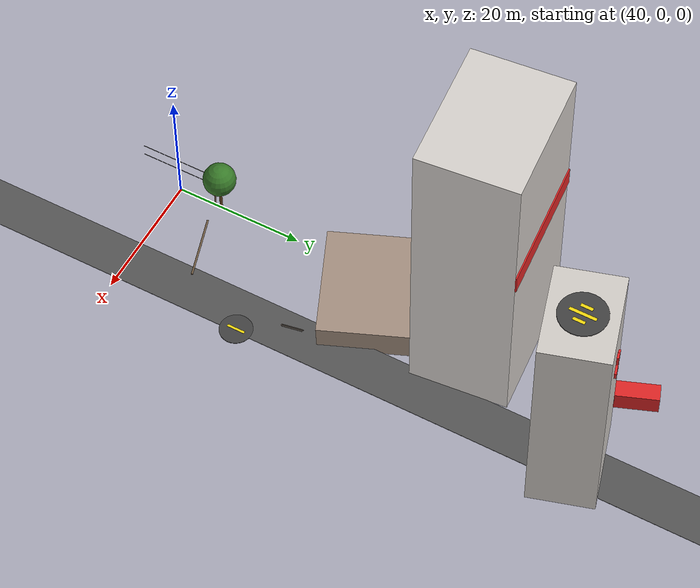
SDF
<sdf version="1.9">
 <world name="p110_world">
  <model name="road_ns_e">
   <static>true</static>
   <pose>55 0 0.05 0 0 0</pose>
   <link name="link">
    <visual name="v">
     <geometry><box><size>7 260 0.08</size></box></geometry>
     <material>
      <ambient>0.27 0.27 0.27 1</ambient>
      <diffuse>0.33 0.33 0.33 1</diffuse>
      <specular>0.10 0.10 0.10 1</specular>
     </material>
    </visual>
   </link>
  </model>
  <model name="clinic">
   <static>true</static>
   <pose>55 72 18 0 0 0.3</pose>
   <link name="link">
    <collision name="c"><geometry><box><size>14 10 36</size></box></geometry></collision>
    <visual name="main">
     <geometry><box><size>14 10 36</size></box></geometry>
     <material>
      <ambient>0.72 0.70 0.68 1</ambient>
      <diffuse>0.82 0.80 0.78 1</diffuse>
      <specular>0.18 0.18 0.18 1</specular>
     </material>
    </visual>
    <visual name="cross_h">
     <pose>0 5.2 8 0 0 0</pose>
     <geometry><box><size>4 0.3 1</size></box></geometry>
     <material><ambient>0.85 0.12 0.12 1</ambient><diffuse>0.90 0.15 0.15 1</diffuse></material>
    </visual>
    <visual name="cross_v">
     <pose>0 5.2 8 0 0 0</pose>
     <geometry><box><size>1 0.3 4</size></box></geometry>
     <material><ambient>0.85 0.12 0.12 1</ambient><diffuse>0.90 0.15 0.15 1</diffuse></material>
    </visual>
   </link>
  </model>
  <model name="rubble_pile_1">
   <static>true</static>
   <pose>45 35 3 0 0.15 0.4</pose>
   <link name="link">
    <collision name="c"><geometry><box><size>16 14 6</size></box></geometry></collision>
    <visual name="v">
     <geometry><box><size>16 14 6</size></box></geometry>
     <material><ambient>0.56 0.52 0.46 1</ambient><diffuse>0.64 0.56 0.50 1</diffuse></material>
    </visual>
   </link>
  </model>
  <model name="beam_2">
   <static>true</static>
   <pose>55 28 2.0 0 0.65 -0.4</pose>
   <link name="link">
    <collision name="c"><geometry><box><size>0.25 0.25 7</size></box></geometry></collision>
    <visual name="v">
     <geometry><box><size>0.25 0.25 7</size></box></geometry>
     <material>
      <ambient>0.28 0.26 0.24 1</ambient>
      <diffuse>0.36 0.33 0.30 1</diffuse>
      <specular>0.45 0.42 0.38 1</specular>
     </material>
    </visual>
   </link>
  </model>
  <model name="tr_ew4">
   <static>true</static>
   <pose>40 7 0 0 0 0</pose>
   <link name="link">
    <visual name="t">
     <pose>0 0 2.5 0 0 0</pose>
     <geometry><cylinder><radius>0.22</radius><length>5</length></cylinder></geometry>
     <material><ambient>0.34 0.21 0.10 1</ambient><diffuse>0.40 0.26 0.13 1</diffuse></material>
    </visual>
    <visual name="c">
     <pose>0 0 6.8 0 0 0</pose>
     <geometry><sphere><radius>2.5</radius></sphere></geometry>
     <material><ambient>0.18 0.40 0.13 1</ambient><diffuse>0.22 0.48 0.16 1</diffuse></material>
    </visual>
   </link>
  </model>
  <model name="tr_court3">
   <static>true</static>
   <pose>35 55 0 0 0 0</pose>
   <link name="link">
    <visual name="t">
     <pose>0 0 2.5 0 0 0</pose>
     <geometry><cylinder><radius>0.20</radius><length>5</length></cylinder></geometry>
     <material><ambient>0.35 0.22 0.10 1</ambient><diffuse>0.42 0.27 0.13 1</diffuse></material>
    </visual>
    <visual name="c">
     <pose>0 0 6.6 0 0 0</pose>
     <geometry><sphere><radius>2.3</radius></sphere></geometry>
     <material><ambient>0.17 0.41 0.13 1</ambient><diffuse>0.21 0.49 0.16 1</diffuse></material>
    </visual>
   </link>
  </model>
  <model name="fire_truck">
   <static>true</static>
   <pose>42 75 1.5 0 0 -1.2</pose>
   <link name="link">
    <collision name="c"><geometry><box><size>9 2.6 3.0</size></box></geometry></collision>
    <visual name="body">
     <geometry><box><size>9 2.6 3.0</size></box></geometry>
     <material>
      <ambient>0.78 0.12 0.12 1</ambient>
      <diffuse>0.88 0.15 0.15 1</diffuse>
      <specular>0.28 0.12 0.12 1</specular>
     </material>
    </visual>
    <visual name="stripe">
     <pose>3.2 0 0.5 0 0 0</pose>
     <geometry><box><size>2.6 2.62 0.9</size></box></geometry>
     <material><ambient>0.85 0.85 0.85 1</ambient><diffuse>0.90 0.90 0.90 1</diffuse></material>
    </visual>
   </link>
  </model>
  <model name="pole_fallen1">
   <static>true</static>
   <pose>48 8 0.15 0 1.5708 0.3</pose>
   <link name="link">
    <collision name="c">
     <geometry><cylinder><radius>0.15</radius><length>10</length></cylinder></geometry>
    </collision>
    <visual name="v">
     <geometry><cylinder><radius>0.15</radius><length>10</length></cylinder></geometry>
     <material><ambient>0.35 0.28 0.20 1</ambient><diffuse>0.42 0.34 0.25 1</diffuse></material>
    </visual>
   </link>
  </model>
  <model name="smoke_rubble1">
   <static>true</static>
   <pose>45 35 6.5 0 0 0</pose>
   <link name="link">
    <particle_emitter name="smoke" type="point">
     <emitting>true</emitting>
     <duration>0</duration>
     <size>2 2 2</size>
     <particle_size>1.5 1.5 1.5</particle_size>
     <lifetime>6</lifetime>
     <min_velocity>0.3</min_velocity>
     <max_velocity>0.9</max_velocity>
     <scale_rate>0.35</scale_rate>
     <color_start>0.08 0.08 0.08 0.90</color_start>
     <color_end>0.40 0.40 0.40 0.0</color_end>
     <rate>12</rate>
    </particle_emitter>
   </link>
  </model>
  <model name="cable_pole_2b">
   <static>true</static>
   <pose>40 6 3.0 0 0 0</pose>
   <link name="link">
    <collision name="c">
     <geometry><cylinder><radius>0.12</radius><length>6</length></cylinder></geometry>
    </collision>
    <visual name="v">
     <geometry><cylinder><radius>0.12</radius><length>6</length></cylinder></geometry>
     <material><ambient>0.35 0.28 0.20 1</ambient><diffuse>0.42 0.34 0.25 1</diffuse></material>
    </visual>
   </link>
  </model>
  <model name="cable_2_4m">
   <static>true</static>
   <pose>40 0 4.9 0 0 0</pose>
   <link name="link">
    <collision name="c"><geometry><box><size>0.05 12 0.05</size></box></geometry></collision>
    <visual name="v">
     <geometry><box><size>0.05 12 0.05</size></box></geometry>
     <material><ambient>0.15 0.15 0.15 1</ambient><diffuse>0.20 0.20 0.20 1</diffuse></material>
    </visual>
   </link>
  </model>
  <model name="cable_2_6m">
   <static>true</static>
   <pose>40 0 6.9 0 0 0</pose>
   <link name="link">
    <collision name="c"><geometry><box><size>0.05 12 0.05</size></box></geometry></collision>
    <visual name="v">
     <geometry><box><size>0.05 12 0.05</size></box></geometry>
     <material><ambient>0.15 0.15 0.15 1</ambient><diffuse>0.20 0.20 0.20 1</diffuse></material>
    </visual>
   </link>
  </model>
  <model name="lz3">
   <static>true</static>
   <pose>58 20 0.06 0 0 0</pose>
   <link name="link">
    <visual name="pad">
     <geometry><cylinder><radius>2.5</radius><length>0.10</length></cylinder></geometry>
     <material><ambient>0.20 0.20 0.20 1</ambient><diffuse>0.26 0.26 0.26 1</diffuse></material>
    </visual>
    <visual name="h">
     <pose>0 0 0.06 0 0 0</pose>
     <geometry><box><size>0.4 2.8 0.02</size></box></geometry>
     <material><ambient>0.95 0.85 0.05 1</ambient><diffuse>0.95 0.85 0.05 1</diffuse></material>
    </visual>
   </link>
  </model>
  <model name="medical_center">
   <static>true</static>
   <pose>42 52 25 0 0 0.1</pose>
   <link name="link">
    <collision name="c"><geometry><box><size>20 15 50</size></box></geometry></collision>
    <visual name="main">
     <geometry><box><size>20 15 50</size></box></geometry>
     <material>
      <ambient>0.74 0.72 0.70 1</ambient>
      <diffuse>0.84 0.82 0.80 1</diffuse>
      <specular>0.16 0.16 0.16 1</specular>
     </material>
    </visual>
    <visual name="stripe">
     <pose>0 7.6 5 0 0 0</pose>
     <geometry><box><size>20 0.2 3</size></box></geometry>
     <material><ambient>0.82 0.12 0.12 1</ambient><diffuse>0.90 0.15 0.15 1</diffuse></material>
    </visual>
   </link>
  </model>
  <model name="rt_clinic_helipad">
   <static>true</static>
   <pose>55 72 36.1 0 0 0</pose>
   <link name="link">
    <visual name="pad">
     <geometry><cylinder><radius>3.5</radius><length>0.12</length></cylinder></geometry>
     <material><ambient>0.20 0.20 0.20 1</ambient><diffuse>0.26 0.26 0.26 1</diffuse></material>
    </visual>
    <visual name="h_v">
     <pose>0 0 0.07 0 0 0</pose>
     <geometry><box><size>0.5 4 0.02</size></box></geometry>
     <material><ambient>0.95 0.85 0.05 1</ambient><diffuse>0.95 0.85 0.05 1</diffuse></material>
    </visual>
    <visual name="h_l">
     <pose>-1.2 0 0.07 0 0 0</pose>
     <geometry><box><size>0.5 1.8 0.02</size></box></geometry>
     <material><ambient>0.95 0.85 0.05 1</ambient><diffuse>0.95 0.85 0.05 1</diffuse></material>
    </visual>
    <visual name="h_r">
     <pose>1.2 0 0.07 0 0 0</pose>
     <geometry><box><size>0.5 1.8 0.02</size></box></geometry>
     <material><ambient>0.95 0.85 0.05 1</ambient><diffuse>0.95 0.85 0.05 1</diffuse></material>
    </visual>
   </link>
  </model>
 </world>
</sdf>
